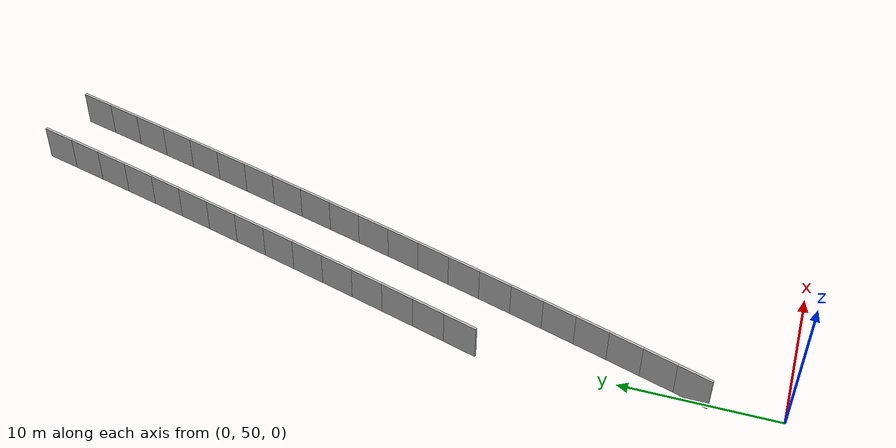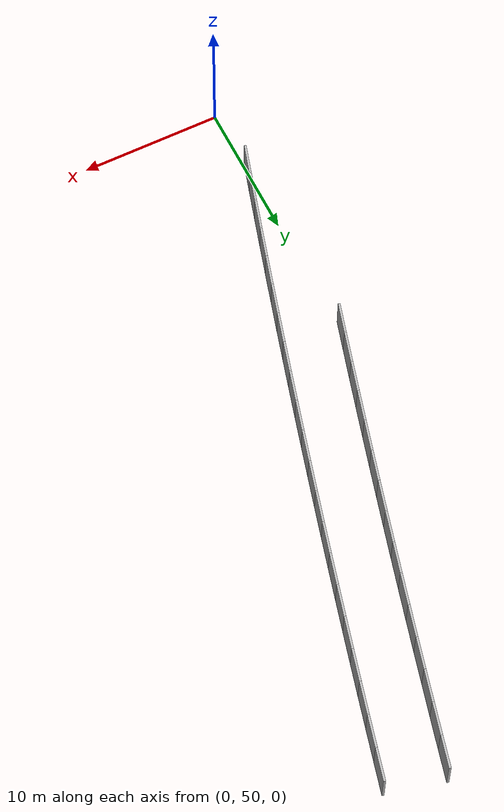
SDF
<?xml version="1.0" ?>
<sdf version="1.6">
  <model name="sps_2309">
    <pose frame="">0 0 0 0 -0 0</pose>
    <static>1</static>
    <self_collide>0</self_collide>
    <allow_auto_disable>0</allow_auto_disable>
    <link name="Wall4461">
      <kinematic>0</kinematic>
      <gravity>1</gravity>
      <self_collide>0</self_collide>
      <collision name="collision">
        <geometry>
          <box>
            <size>2.25479 0.15 2.5</size>
          </box>
        </geometry>
        <pose frame="">0 0 0 0 -0 0</pose>
      </collision>
      <visual name="visual">
        <geometry>
          <box>
            <size>2.25479 0.15 2.5</size>
          </box>
        </geometry>
        <pose frame="">0 0 0 0 -0 0</pose>
        <cast_shadows>1</cast_shadows>
        <transparency>0.0</transparency>
      </visual>
      <pose frame="">0.170951 55.5772 1.25 0 -0 1.27103</pose>
    </link>
    <link name="Wall4462">
      <kinematic>0</kinematic>
      <gravity>1</gravity>
      <self_collide>0</self_collide>
      <collision name="collision">
        <geometry>
          <box>
            <size>2.25459 0.15 2.5</size>
          </box>
        </geometry>
        <pose frame="">0 0 0 0 -0 0</pose>
      </collision>
      <visual name="visual">
        <geometry>
          <box>
            <size>2.25459 0.15 2.5</size>
          </box>
        </geometry>
        <pose frame="">0 0 0 0 -0 0</pose>
        <cast_shadows>1</cast_shadows>
        <transparency>0.0</transparency>
      </visual>
      <pose frame="">0.833976 57.7322 1.25 0 -0 1.27361</pose>
    </link>
    <link name="Wall4463">
      <kinematic>0</kinematic>
      <gravity>1</gravity>
      <self_collide>0</self_collide>
      <collision name="collision">
        <geometry>
          <box>
            <size>2.25476 0.15 2.5</size>
          </box>
        </geometry>
        <pose frame="">0 0 0 0 -0 0</pose>
      </collision>
      <visual name="visual">
        <geometry>
          <box>
            <size>2.25476 0.15 2.5</size>
          </box>
        </geometry>
        <pose frame="">0 0 0 0 -0 0</pose>
        <cast_shadows>1</cast_shadows>
        <transparency>0.0</transparency>
      </visual>
      <pose frame="">1.49178 59.8888 1.25 0 -0 1.27587</pose>
    </link>
    <link name="Wall4464">
      <kinematic>0</kinematic>
      <gravity>1</gravity>
      <self_collide>0</self_collide>
      <collision name="collision">
        <geometry>
          <box>
            <size>2.25459 0.15 2.5</size>
          </box>
        </geometry>
        <pose frame="">0 0 0 0 -0 0</pose>
      </collision>
      <visual name="visual">
        <geometry>
          <box>
            <size>2.25459 0.15 2.5</size>
          </box>
        </geometry>
        <pose frame="">0 0 0 0 -0 0</pose>
        <cast_shadows>1</cast_shadows>
        <transparency>0.0</transparency>
      </visual>
      <pose frame="">2.14455 62.0469 1.25 0 -0 1.27828</pose>
    </link>
    <link name="Wall4465">
      <kinematic>0</kinematic>
      <gravity>1</gravity>
      <self_collide>0</self_collide>
      <collision name="collision">
        <geometry>
          <box>
            <size>2.25451 0.15 2.5</size>
          </box>
        </geometry>
        <pose frame="">0 0 0 0 -0 0</pose>
      </collision>
      <visual name="visual">
        <geometry>
          <box>
            <size>2.25451 0.15 2.5</size>
          </box>
        </geometry>
        <pose frame="">0 0 0 0 -0 0</pose>
        <cast_shadows>1</cast_shadows>
        <transparency>0.0</transparency>
      </visual>
      <pose frame="">2.79223 64.2064 1.25 0 -0 1.28056</pose>
    </link>
    <link name="Wall4466">
      <kinematic>0</kinematic>
      <gravity>1</gravity>
      <self_collide>0</self_collide>
      <collision name="collision">
        <geometry>
          <box>
            <size>2.25473 0.15 2.5</size>
          </box>
        </geometry>
        <pose frame="">0 0 0 0 -0 0</pose>
      </collision>
      <visual name="visual">
        <geometry>
          <box>
            <size>2.25473 0.15 2.5</size>
          </box>
        </geometry>
        <pose frame="">0 0 0 0 -0 0</pose>
        <cast_shadows>1</cast_shadows>
        <transparency>0.0</transparency>
      </visual>
      <pose frame="">3.43484 66.3675 1.25 0 -0 1.28299</pose>
    </link>
    <link name="Wall4467">
      <kinematic>0</kinematic>
      <gravity>1</gravity>
      <self_collide>0</self_collide>
      <collision name="collision">
        <geometry>
          <box>
            <size>2.25454 0.15 2.5</size>
          </box>
        </geometry>
        <pose frame="">0 0 0 0 -0 0</pose>
      </collision>
      <visual name="visual">
        <geometry>
          <box>
            <size>2.25454 0.15 2.5</size>
          </box>
        </geometry>
        <pose frame="">0 0 0 0 -0 0</pose>
        <cast_shadows>1</cast_shadows>
        <transparency>0.0</transparency>
      </visual>
      <pose frame="">4.07214 68.5302 1.25 0 -0 1.28547</pose>
    </link>
    <link name="Wall4468">
      <kinematic>0</kinematic>
      <gravity>1</gravity>
      <self_collide>0</self_collide>
      <collision name="collision">
        <geometry>
          <box>
            <size>2.25473 0.15 2.5</size>
          </box>
        </geometry>
        <pose frame="">0 0 0 0 -0 0</pose>
      </collision>
      <visual name="visual">
        <geometry>
          <box>
            <size>2.25473 0.15 2.5</size>
          </box>
        </geometry>
        <pose frame="">0 0 0 0 -0 0</pose>
        <cast_shadows>1</cast_shadows>
        <transparency>0.0</transparency>
      </visual>
      <pose frame="">4.70434 70.6944 1.25 0 -0 1.2877</pose>
    </link>
    <link name="Wall4469">
      <kinematic>0</kinematic>
      <gravity>1</gravity>
      <self_collide>0</self_collide>
      <collision name="collision">
        <geometry>
          <box>
            <size>2.25463 0.15 2.5</size>
          </box>
        </geometry>
        <pose frame="">0 0 0 0 -0 0</pose>
      </collision>
      <visual name="visual">
        <geometry>
          <box>
            <size>2.25463 0.15 2.5</size>
          </box>
        </geometry>
        <pose frame="">0 0 0 0 -0 0</pose>
        <cast_shadows>1</cast_shadows>
        <transparency>0.0</transparency>
      </visual>
      <pose frame="">5.33144 72.8601 1.25 0 -0 1.29019</pose>
    </link>
    <link name="Wall4470">
      <kinematic>0</kinematic>
      <gravity>1</gravity>
      <self_collide>0</self_collide>
      <collision name="collision">
        <geometry>
          <box>
            <size>2.25473 0.15 2.5</size>
          </box>
        </geometry>
        <pose frame="">0 0 0 0 -0 0</pose>
      </collision>
      <visual name="visual">
        <geometry>
          <box>
            <size>2.25473 0.15 2.5</size>
          </box>
        </geometry>
        <pose frame="">0 0 0 0 -0 0</pose>
        <cast_shadows>1</cast_shadows>
        <transparency>0.0</transparency>
      </visual>
      <pose frame="">5.95336 75.0273 1.25 0 -0 1.29249</pose>
    </link>
    <link name="Wall4471">
      <kinematic>0</kinematic>
      <gravity>1</gravity>
      <self_collide>0</self_collide>
      <collision name="collision">
        <geometry>
          <box>
            <size>2.25452 0.15 2.5</size>
          </box>
        </geometry>
        <pose frame="">0 0 0 0 -0 0</pose>
      </collision>
      <visual name="visual">
        <geometry>
          <box>
            <size>2.25452 0.15 2.5</size>
          </box>
        </geometry>
        <pose frame="">0 0 0 0 -0 0</pose>
        <cast_shadows>1</cast_shadows>
        <transparency>0.0</transparency>
      </visual>
      <pose frame="">6.57027 77.1959 1.25 0 -0 1.29479</pose>
    </link>
    <link name="Wall4472">
      <kinematic>0</kinematic>
      <gravity>1</gravity>
      <self_collide>0</self_collide>
      <collision name="collision">
        <geometry>
          <box>
            <size>2.25476 0.15 2.5</size>
          </box>
        </geometry>
        <pose frame="">0 0 0 0 -0 0</pose>
      </collision>
      <visual name="visual">
        <geometry>
          <box>
            <size>2.25476 0.15 2.5</size>
          </box>
        </geometry>
        <pose frame="">0 0 0 0 -0 0</pose>
        <cast_shadows>1</cast_shadows>
        <transparency>0.0</transparency>
      </visual>
      <pose frame="">7.18185 79.366 1.25 0 -0 1.29741</pose>
    </link>
    <link name="Wall4473">
      <kinematic>0</kinematic>
      <gravity>1</gravity>
      <self_collide>0</self_collide>
      <collision name="collision">
        <geometry>
          <box>
            <size>2.25459 0.15 2.5</size>
          </box>
        </geometry>
        <pose frame="">0 0 0 0 -0 0</pose>
      </collision>
      <visual name="visual">
        <geometry>
          <box>
            <size>2.25459 0.15 2.5</size>
          </box>
        </geometry>
        <pose frame="">0 0 0 0 -0 0</pose>
        <cast_shadows>1</cast_shadows>
        <transparency>0.0</transparency>
      </visual>
      <pose frame="">7.78823 81.5376 1.25 0 -0 1.29958</pose>
    </link>
    <link name="Wall4474">
      <kinematic>0</kinematic>
      <gravity>1</gravity>
      <self_collide>0</self_collide>
      <collision name="collision">
        <geometry>
          <box>
            <size>2.25457 0.15 2.5</size>
          </box>
        </geometry>
        <pose frame="">0 0 0 0 -0 0</pose>
      </collision>
      <visual name="visual">
        <geometry>
          <box>
            <size>2.25457 0.15 2.5</size>
          </box>
        </geometry>
        <pose frame="">0 0 0 0 -0 0</pose>
        <cast_shadows>1</cast_shadows>
        <transparency>0.0</transparency>
      </visual>
      <pose frame="">8.38955 83.7105 1.25 0 -0 1.30205</pose>
    </link>
    <link name="Wall4475">
      <kinematic>0</kinematic>
      <gravity>1</gravity>
      <self_collide>0</self_collide>
      <collision name="collision">
        <geometry>
          <box>
            <size>2.25435 0.15 2.5</size>
          </box>
        </geometry>
        <pose frame="">0 0 0 0 -0 0</pose>
      </collision>
      <visual name="visual">
        <geometry>
          <box>
            <size>2.25435 0.15 2.5</size>
          </box>
        </geometry>
        <pose frame="">0 0 0 0 -0 0</pose>
        <cast_shadows>1</cast_shadows>
        <transparency>0.0</transparency>
      </visual>
      <pose frame="">8.98565 85.8847 1.25 0 -0 1.30436</pose>
    </link>
    <link name="Wall4476">
      <kinematic>0</kinematic>
      <gravity>1</gravity>
      <self_collide>0</self_collide>
      <collision name="collision">
        <geometry>
          <box>
            <size>2.25471 0.15 2.5</size>
          </box>
        </geometry>
        <pose frame="">0 0 0 0 -0 0</pose>
      </collision>
      <visual name="visual">
        <geometry>
          <box>
            <size>2.25471 0.15 2.5</size>
          </box>
        </geometry>
        <pose frame="">0 0 0 0 -0 0</pose>
        <cast_shadows>1</cast_shadows>
        <transparency>0.0</transparency>
      </visual>
      <pose frame="">9.57665 88.0604 1.25 0 -0 1.30676</pose>
    </link>
    <link name="Wall4477">
      <kinematic>0</kinematic>
      <gravity>1</gravity>
      <self_collide>0</self_collide>
      <collision name="collision">
        <geometry>
          <box>
            <size>2.25466 0.15 2.5</size>
          </box>
        </geometry>
        <pose frame="">0 0 0 0 -0 0</pose>
      </collision>
      <visual name="visual">
        <geometry>
          <box>
            <size>2.25466 0.15 2.5</size>
          </box>
        </geometry>
        <pose frame="">0 0 0 0 -0 0</pose>
        <cast_shadows>1</cast_shadows>
        <transparency>0.0</transparency>
      </visual>
      <pose frame="">10.1624 90.2377 1.25 0 -0 1.30925</pose>
    </link>
    <link name="Wall4478">
      <kinematic>0</kinematic>
      <gravity>1</gravity>
      <self_collide>0</self_collide>
      <collision name="collision">
        <geometry>
          <box>
            <size>2.25455 0.15 2.5</size>
          </box>
        </geometry>
        <pose frame="">0 0 0 0 -0 0</pose>
      </collision>
      <visual name="visual">
        <geometry>
          <box>
            <size>2.25455 0.15 2.5</size>
          </box>
        </geometry>
        <pose frame="">0 0 0 0 -0 0</pose>
        <cast_shadows>1</cast_shadows>
        <transparency>0.0</transparency>
      </visual>
      <pose frame="">10.7429 92.4163 1.25 0 -0 1.31153</pose>
    </link>
    <link name="Wall4479">
      <kinematic>0</kinematic>
      <gravity>1</gravity>
      <self_collide>0</self_collide>
      <collision name="collision">
        <geometry>
          <box>
            <size>2.25457 0.15 2.5</size>
          </box>
        </geometry>
        <pose frame="">0 0 0 0 -0 0</pose>
      </collision>
      <visual name="visual">
        <geometry>
          <box>
            <size>2.25457 0.15 2.5</size>
          </box>
        </geometry>
        <pose frame="">0 0 0 0 -0 0</pose>
        <cast_shadows>1</cast_shadows>
        <transparency>0.0</transparency>
      </visual>
      <pose frame="">11.3183 94.5962 1.25 0 -0 1.31394</pose>
    </link>
    <link name="Wall4480">
      <kinematic>0</kinematic>
      <gravity>1</gravity>
      <self_collide>0</self_collide>
      <collision name="collision">
        <geometry>
          <box>
            <size>2.25463 0.15 2.5</size>
          </box>
        </geometry>
        <pose frame="">0 0 0 0 -0 0</pose>
      </collision>
      <visual name="visual">
        <geometry>
          <box>
            <size>2.25463 0.15 2.5</size>
          </box>
        </geometry>
        <pose frame="">0 0 0 0 -0 0</pose>
        <cast_shadows>1</cast_shadows>
        <transparency>0.0</transparency>
      </visual>
      <pose frame="">11.8884 96.7775 1.25 0 -0 1.3163</pose>
    </link>
    <link name="Wall4481">
      <kinematic>0</kinematic>
      <gravity>1</gravity>
      <self_collide>0</self_collide>
      <collision name="collision">
        <geometry>
          <box>
            <size>2.25478 0.15 2.5</size>
          </box>
        </geometry>
        <pose frame="">0 0 0 0 -0 0</pose>
      </collision>
      <visual name="visual">
        <geometry>
          <box>
            <size>2.25478 0.15 2.5</size>
          </box>
        </geometry>
        <pose frame="">0 0 0 0 -0 0</pose>
        <cast_shadows>1</cast_shadows>
        <transparency>0.0</transparency>
      </visual>
      <pose frame="">12.4537 98.9602 1.25 0 -0 1.31852</pose>
    </link>
    <link name="Wall6192">
      <kinematic>0</kinematic>
      <gravity>1</gravity>
      <self_collide>0</self_collide>
      <collision name="collision">
        <geometry>
          <box>
            <size>2.24491 0.15 2.5</size>
          </box>
        </geometry>
        <pose frame="">0 0 0 0 -0 0</pose>
      </collision>
      <visual name="visual">
        <geometry>
          <box>
            <size>2.24491 0.15 2.5</size>
          </box>
        </geometry>
        <pose frame="">0 0 0 0 -0 0</pose>
        <cast_shadows>1</cast_shadows>
        <transparency>0.0</transparency>
      </visual>
      <pose frame="">0.100364 69.6957 1.25 0 -0 1.28532</pose>
    </link>
    <link name="Wall6193">
      <kinematic>0</kinematic>
      <gravity>1</gravity>
      <self_collide>0</self_collide>
      <collision name="collision">
        <geometry>
          <box>
            <size>2.2448 0.15 2.5</size>
          </box>
        </geometry>
        <pose frame="">0 0 0 0 -0 0</pose>
      </collision>
      <visual name="visual">
        <geometry>
          <box>
            <size>2.2448 0.15 2.5</size>
          </box>
        </geometry>
        <pose frame="">0 0 0 0 -0 0</pose>
        <cast_shadows>1</cast_shadows>
        <transparency>0.0</transparency>
      </visual>
      <pose frame="">0.729759 71.8505 1.25 0 -0 1.28791</pose>
    </link>
    <link name="Wall6194">
      <kinematic>0</kinematic>
      <gravity>1</gravity>
      <self_collide>0</self_collide>
      <collision name="collision">
        <geometry>
          <box>
            <size>2.24488 0.15 2.5</size>
          </box>
        </geometry>
        <pose frame="">0 0 0 0 -0 0</pose>
      </collision>
      <visual name="visual">
        <geometry>
          <box>
            <size>2.24488 0.15 2.5</size>
          </box>
        </geometry>
        <pose frame="">0 0 0 0 -0 0</pose>
        <cast_shadows>1</cast_shadows>
        <transparency>0.0</transparency>
      </visual>
      <pose frame="">1.35406 74.0068 1.25 0 -0 1.29004</pose>
    </link>
    <link name="Wall6195">
      <kinematic>0</kinematic>
      <gravity>1</gravity>
      <self_collide>0</self_collide>
      <collision name="collision">
        <geometry>
          <box>
            <size>2.24503 0.15 2.5</size>
          </box>
        </geometry>
        <pose frame="">0 0 0 0 -0 0</pose>
      </collision>
      <visual name="visual">
        <geometry>
          <box>
            <size>2.24503 0.15 2.5</size>
          </box>
        </geometry>
        <pose frame="">0 0 0 0 -0 0</pose>
        <cast_shadows>1</cast_shadows>
        <transparency>0.0</transparency>
      </visual>
      <pose frame="">1.97347 76.1646 1.25 0 -0 1.29247</pose>
    </link>
    <link name="Wall6196">
      <kinematic>0</kinematic>
      <gravity>1</gravity>
      <self_collide>0</self_collide>
      <collision name="collision">
        <geometry>
          <box>
            <size>2.24466 0.15 2.5</size>
          </box>
        </geometry>
        <pose frame="">0 0 0 0 -0 0</pose>
      </collision>
      <visual name="visual">
        <geometry>
          <box>
            <size>2.24466 0.15 2.5</size>
          </box>
        </geometry>
        <pose frame="">0 0 0 0 -0 0</pose>
        <cast_shadows>1</cast_shadows>
        <transparency>0.0</transparency>
      </visual>
      <pose frame="">2.58758 78.3238 1.25 0 -0 1.29494</pose>
    </link>
    <link name="Wall6197">
      <kinematic>0</kinematic>
      <gravity>1</gravity>
      <self_collide>0</self_collide>
      <collision name="collision">
        <geometry>
          <box>
            <size>2.24483 0.15 2.5</size>
          </box>
        </geometry>
        <pose frame="">0 0 0 0 -0 0</pose>
      </collision>
      <visual name="visual">
        <geometry>
          <box>
            <size>2.24483 0.15 2.5</size>
          </box>
        </geometry>
        <pose frame="">0 0 0 0 -0 0</pose>
        <cast_shadows>1</cast_shadows>
        <transparency>0.0</transparency>
      </visual>
      <pose frame="">3.19646 80.4844 1.25 0 -0 1.29727</pose>
    </link>
    <link name="Wall6198">
      <kinematic>0</kinematic>
      <gravity>1</gravity>
      <self_collide>0</self_collide>
      <collision name="collision">
        <geometry>
          <box>
            <size>2.24461 0.15 2.5</size>
          </box>
        </geometry>
        <pose frame="">0 0 0 0 -0 0</pose>
      </collision>
      <visual name="visual">
        <geometry>
          <box>
            <size>2.24461 0.15 2.5</size>
          </box>
        </geometry>
        <pose frame="">0 0 0 0 -0 0</pose>
        <cast_shadows>1</cast_shadows>
        <transparency>0.0</transparency>
      </visual>
      <pose frame="">3.80025 82.6464 1.25 0 -0 1.29965</pose>
    </link>
    <link name="Wall6199">
      <kinematic>0</kinematic>
      <gravity>1</gravity>
      <self_collide>0</self_collide>
      <collision name="collision">
        <geometry>
          <box>
            <size>2.24481 0.15 2.5</size>
          </box>
        </geometry>
        <pose frame="">0 0 0 0 -0 0</pose>
      </collision>
      <visual name="visual">
        <geometry>
          <box>
            <size>2.24481 0.15 2.5</size>
          </box>
        </geometry>
        <pose frame="">0 0 0 0 -0 0</pose>
        <cast_shadows>1</cast_shadows>
        <transparency>0.0</transparency>
      </visual>
      <pose frame="">4.39886 84.8098 1.25 0 -0 1.30207</pose>
    </link>
    <link name="Wall6200">
      <kinematic>0</kinematic>
      <gravity>1</gravity>
      <self_collide>0</self_collide>
      <collision name="collision">
        <geometry>
          <box>
            <size>2.2445 0.15 2.5</size>
          </box>
        </geometry>
        <pose frame="">0 0 0 0 -0 0</pose>
      </collision>
      <visual name="visual">
        <geometry>
          <box>
            <size>2.2445 0.15 2.5</size>
          </box>
        </geometry>
        <pose frame="">0 0 0 0 -0 0</pose>
        <cast_shadows>1</cast_shadows>
        <transparency>0.0</transparency>
      </visual>
      <pose frame="">4.99227 86.9746 1.25 0 -0 1.30443</pose>
    </link>
    <link name="Wall6201">
      <kinematic>0</kinematic>
      <gravity>1</gravity>
      <self_collide>0</self_collide>
      <collision name="collision">
        <geometry>
          <box>
            <size>2.24482 0.15 2.5</size>
          </box>
        </geometry>
        <pose frame="">0 0 0 0 -0 0</pose>
      </collision>
      <visual name="visual">
        <geometry>
          <box>
            <size>2.24482 0.15 2.5</size>
          </box>
        </geometry>
        <pose frame="">0 0 0 0 -0 0</pose>
        <cast_shadows>1</cast_shadows>
        <transparency>0.0</transparency>
      </visual>
      <pose frame="">5.58056 89.1408 1.25 0 -0 1.3068</pose>
    </link>
    <link name="Wall6202">
      <kinematic>0</kinematic>
      <gravity>1</gravity>
      <self_collide>0</self_collide>
      <collision name="collision">
        <geometry>
          <box>
            <size>2.24501 0.15 2.5</size>
          </box>
        </geometry>
        <pose frame="">0 0 0 0 -0 0</pose>
      </collision>
      <visual name="visual">
        <geometry>
          <box>
            <size>2.24501 0.15 2.5</size>
          </box>
        </geometry>
        <pose frame="">0 0 0 0 -0 0</pose>
        <cast_shadows>1</cast_shadows>
        <transparency>0.0</transparency>
      </visual>
      <pose frame="">6.16384 91.3086 1.25 0 -0 1.30911</pose>
    </link>
    <link name="Wall6203">
      <kinematic>0</kinematic>
      <gravity>1</gravity>
      <self_collide>0</self_collide>
      <collision name="collision">
        <geometry>
          <box>
            <size>2.24468 0.15 2.5</size>
          </box>
        </geometry>
        <pose frame="">0 0 0 0 -0 0</pose>
      </collision>
      <visual name="visual">
        <geometry>
          <box>
            <size>2.24468 0.15 2.5</size>
          </box>
        </geometry>
        <pose frame="">0 0 0 0 -0 0</pose>
        <cast_shadows>1</cast_shadows>
        <transparency>0.0</transparency>
      </visual>
      <pose frame="">6.74206 93.4777 1.25 0 -0 1.31146</pose>
    </link>
    <link name="Wall6204">
      <kinematic>0</kinematic>
      <gravity>1</gravity>
      <self_collide>0</self_collide>
      <collision name="collision">
        <geometry>
          <box>
            <size>2.24483 0.15 2.5</size>
          </box>
        </geometry>
        <pose frame="">0 0 0 0 -0 0</pose>
      </collision>
      <visual name="visual">
        <geometry>
          <box>
            <size>2.24483 0.15 2.5</size>
          </box>
        </geometry>
        <pose frame="">0 0 0 0 -0 0</pose>
        <cast_shadows>1</cast_shadows>
        <transparency>0.0</transparency>
      </visual>
      <pose frame="">7.31496 95.6481 1.25 0 -0 1.31398</pose>
    </link>
    <link name="Wall6205">
      <kinematic>0</kinematic>
      <gravity>1</gravity>
      <self_collide>0</self_collide>
      <collision name="collision">
        <geometry>
          <box>
            <size>2.24468 0.15 2.5</size>
          </box>
        </geometry>
        <pose frame="">0 0 0 0 -0 0</pose>
      </collision>
      <visual name="visual">
        <geometry>
          <box>
            <size>2.24468 0.15 2.5</size>
          </box>
        </geometry>
        <pose frame="">0 0 0 0 -0 0</pose>
        <cast_shadows>1</cast_shadows>
        <transparency>0.0</transparency>
      </visual>
      <pose frame="">7.88265 97.8199 1.25 0 -0 1.31627</pose>
    </link>
    <link name="Wall6206">
      <kinematic>0</kinematic>
      <gravity>1</gravity>
      <self_collide>0</self_collide>
      <collision name="collision">
        <geometry>
          <box>
            <size>2.2448 0.15 2.5</size>
          </box>
        </geometry>
        <pose frame="">0 0 0 0 -0 0</pose>
      </collision>
      <visual name="visual">
        <geometry>
          <box>
            <size>2.2448 0.15 2.5</size>
          </box>
        </geometry>
        <pose frame="">0 0 0 0 -0 0</pose>
        <cast_shadows>1</cast_shadows>
        <transparency>0.0</transparency>
      </visual>
      <pose frame="">8.44524 99.993 1.25 0 -0 1.31867</pose>
    </link>
  </model>
</sdf>
